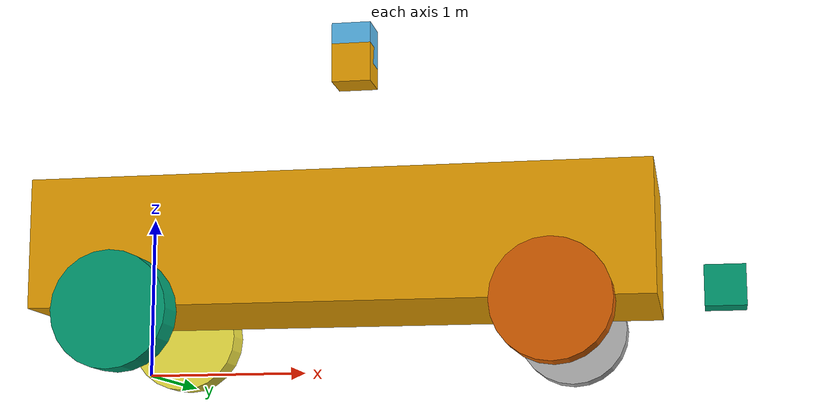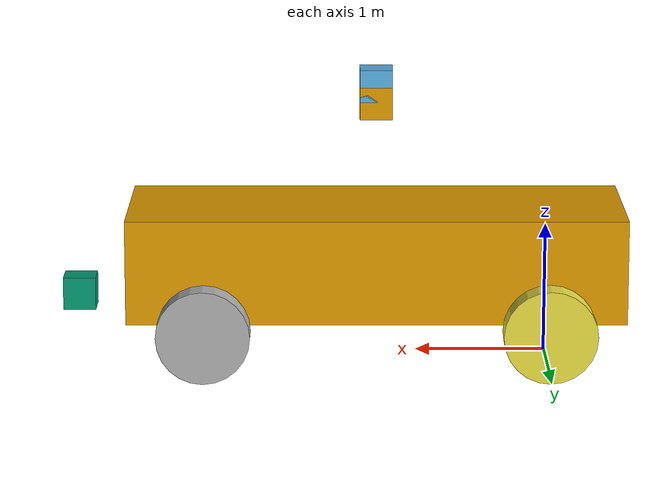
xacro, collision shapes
<?xml version="1.0" ?>

<robot name="$(arg roboname)" xmlns:xacro="http://www.ros.org/wiki/xacro">

  <xacro:property name="PI" value="3.1415926835897931"/>
  <xacro:property name="base_height" value="0.4039"/>  <!-- ed: modified-->
  <xacro:property name="base_mass" value="2050"/>
  <xacro:property name="base_mass_ixx" value="63"/>
  <xacro:property name="base_mass_iyy" value="1048"/>
  <xacro:property name="base_mass_izz" value="1111"/>
  <xacro:property name="base_mass_ixz" value="-31"/>
  <xacro:property name="tyre_x" value="2.62"/>  <!-- ed: modified-->
  <xacro:property name="tyre_y" value="0.765"/>
  <xacro:property name="tyre_length" value="0.229"/>
  <xacro:property name="tyre_r" value="0.319"/>  <!-- ed: modified-->
  <xacro:property name="tyre_radius" value="0.356"/>  <!-- ed: 1/0.356 = 2.808,  -->
                                                      <!-- that's why we multiply 2.81 in cmd2gazebo.py to calculate wheel speed. -->
  <xacro:property name="tyre_mass" value="40"/>
  <xacro:property name="tyre_mass_ixx" value="54"/>
  <xacro:property name="tyre_mass_iyy" value="56"/>
  <xacro:property name="tyre_mass_izz" value="104"/>
  <xacro:property name="car_height" value="0.8"/> <!-- ed: modified-->
  <xacro:property name="car_to_bumper" value="3.6"/> <!-- ed: modified-->
  <xacro:property name="front_bumper_height" value="${car_height/2}"/>
  <xacro:property name="sensor_box" value="0.25"/>
  <xacro:property name="sensor_box2" value="0.01"/>
  <xacro:property name="tyre_height" value="-0.696"/>
  <xacro:property name="str_length" value="0.01"/>
  <xacro:property name="str_radius" value="0.1"/>
  <xacro:property name="str_angle" value="0.6"/>
  <xacro:property name="car_width" value="1.301"/>
  <xacro:property name="tyre_origin">
    <origin xyz="0 0 0" rpy="${PI/2} 0 0"/>
  </xacro:property>
  <xacro:property name="tyre_origin_2">
    <origin xyz="0 0 0" rpy="0 0 ${PI/2}"/>
  </xacro:property>
  <xacro:property name="tyre_origin_3">
    <origin xyz="0 0 0" rpy="0 0 ${-PI/2}"/>
  </xacro:property>

  <xacro:include filename="$(find all_in_one)/urdf/dyros_slipping.gazebo"/>

  <!--Car Body-->
  <link name="base_link">
    <collision>
      <origin xyz="1.31 0 ${base_height + 0.36}" rpy="0 0 0"/>   <!-- ed: modified-->
      <geometry>
        <box size="3.8 ${car_width} ${car_height}"/><!-- ed: modified-->
      </geometry>
    </collision>
    <visual>
      <origin xyz="1.06 0 ${base_height + 0.391}" rpy="0 0 0"/>   <!-- ed: modified-->
      <geometry>
        <mesh filename="package://all_in_one/meshes/ford_escape_no_wheels_2.dae"/>
      </geometry>
    </visual>
  </link>

  <joint name="inertial_joint" type="fixed">
    <parent link="base_link"/>
    <child link="main_mass"/>
    <origin xyz="1.05 0 0" rpy="0 0 0"/>
  </joint>

  <link name="main_mass" type="fixed">
    <parent link="inertial_joint"/>
    <inertial>
      <origin xyz="0 0 ${base_height}" rpy="0 0 0"/>
      <mass value="${base_mass}"/>
      <inertia
          ixx="${base_mass_ixx}"  ixy="0.000000" ixz="${base_mass_ixz}"
          iyy="${base_mass_iyy}" iyz="0.000000"
          izz="${base_mass_izz}"/>
    </inertial>
  </link>

  <!--Back Right Wheel-->
  <joint name="back_right_wheel_joint" type="continuous">
    <parent link="base_link"/>
    <child link="back_right_wheel_link"/>
    <origin xyz="0 ${-tyre_y} ${tyre_r}" rpy="0 0 0"/>  <!-- ed: modified-->
    <axis xyz="0 1 0"/>
    <dynamics damping="0.1"/>
    <limit effort="10000" velocity="100" />
    <joint_properties damping="0.0" friction="0.0" />
  </joint>

  <link name="back_right_wheel_link">
    <collision>
      <xacro:insert_block name="tyre_origin"/>
      <geometry>
        <cylinder length="${tyre_length}" radius="${tyre_radius}"/>
      </geometry>
    </collision>

    <visual>
      <xacro:insert_block name="tyre_origin_3"/>
      <geometry>
        <mesh filename="package://all_in_one/meshes/ford_escape_wheel.dae"/>
        <scale xyz="1.2 1 1"/>
      </geometry>
    </visual>

    <inertial>
      <origin xyz="0 0 0" rpy="0 0 0"/>
      <mass value="${tyre_mass}"/>
      <inertia
          ixx="${tyre_mass_ixx}"  ixy="0.000000"  ixz="0.000000"
          iyy="${tyre_mass_iyy}"  iyz="0.000000"
          izz="${tyre_mass_izz}"/>
    </inertial>
  </link>

  <!--Back Left Wheel-->
  <joint name="back_left_wheel_joint" type="continuous">
    <parent link="base_link"/>
    <child link="back_left_wheel_link"/>
    <origin xyz="0 ${tyre_y} ${tyre_r}" rpy="0 0 0"/>  <!-- ed: modified-->
    <axis xyz="0 1 0"/>
    <dynamics damping="0.1"/>
    <limit effort="10000" velocity="100" />
    <joint_properties damping="0.0" friction="0.0" />
  </joint>

  <link name="back_left_wheel_link">
    <collision>
      <xacro:insert_block name="tyre_origin"/>
      <geometry>
        <cylinder length="0.229" radius="${tyre_radius}"/>
      </geometry>
    </collision>

    <visual>
      <xacro:insert_block name="tyre_origin_2"/>
      <geometry>
        <mesh filename="package://all_in_one/meshes/ford_escape_wheel.dae"/>
        <scale xyz="1.2 1 1"/>
      </geometry>
    </visual>

    <inertial>
      <origin xyz="0 0 0" rpy="0 0 0"/>
      <mass value="${tyre_mass}"/>
      <inertia
          ixx="${tyre_mass_ixx}"  ixy="0.000000"  ixz="0.000000"
          iyy="${tyre_mass_iyy}"  iyz="0.000000"
          izz="${tyre_mass_izz}"/>
    </inertial>
  </link>

  <!--Right Steering-->
  <joint name="front_right_steering_joint" type="revolute">
    <parent link="base_link"/>
    <child link="front_right_steering_link"/>
    <origin xyz="${tyre_x} ${-car_width/2 - str_length/2} ${tyre_r}" rpy="0 0 0"/>
    <axis xyz="0 0 1"/>
    <limit effort="1000.0" lower="${-str_angle}" upper="${str_angle}" velocity="0.5"/>
  </joint>

  <link name="front_right_steering_link">
    <collision>
      <xacro:insert_block name="tyre_origin"/>
      <geometry>
        <cylinder length="${str_length}" radius="${str_radius}"/>
      </geometry>
    </collision>

    <visual>
      <xacro:insert_block name="tyre_origin"/>
      <geometry>
        <cylinder length="${str_length}" radius="${str_radius}"/>
      </geometry>
    </visual>

    <inertial>
      <origin xyz="0 0 0" rpy="0 0 0"/>
      <mass value="10.00"/>
      <inertia
          ixx="0.4"  ixy="0.000000"  ixz="0.000000"
          iyy="0.6"  iyz="0.000000"
          izz="0.4"/>
    </inertial>
  </link>

  <!--Right Front Wheel-->
  <joint name="front_right_wheel_joint" type="continuous">
    <parent link="front_right_steering_link"/>
    <child link="front_right_wheel_link"/>
    <origin xyz="0 ${-str_length/2 - tyre_length/2} 0" rpy="0 0 0"/>
    <axis xyz="0 1 0"/>
  </joint>
  <link name="front_right_wheel_link">
    <collision>
      <xacro:insert_block name="tyre_origin"/>
      <geometry>
        <cylinder length="${tyre_length}" radius="${tyre_radius}"/>
      </geometry>
    </collision>

    <visual>
      <xacro:insert_block name="tyre_origin_3"/>
      <geometry>
        <mesh filename="package://all_in_one/meshes/ford_escape_wheel.dae"/>
        <scale xyz="1.2 1 1"/>
      </geometry>
    </visual>

    <inertial>
      <origin xyz="0 0 0" rpy="0 0 0"/>
      <mass value="${tyre_mass}"/>
      <inertia
          ixx="${tyre_mass_ixx}"  ixy="0.000000"  ixz="0.000000"
          iyy="${tyre_mass_iyy}"  iyz="0.000000"
          izz="${tyre_mass_izz}"/>
    </inertial>
  </link>

  <!--Left Steering-->
  <joint name="front_left_steering_joint" type="revolute">
    <parent link="base_link"/>
    <child link="front_left_steering_link"/>
    <origin xyz="${tyre_x} ${car_width/2 + str_length/2} ${tyre_r}" rpy="0 0 0"/>
    <axis xyz="0 0 1"/>
    <limit effort="1000.0" lower="${-str_angle}" upper="${str_angle}" velocity="0.5"/>
  </joint>

  <link name="front_left_steering_link">
    <parent link="base_link"/>
    <collision>
      <xacro:insert_block name="tyre_origin"/>
      <geometry>
        <cylinder length="${str_length}" radius="${str_radius}"/>
      </geometry>
    </collision>

    <visual>
      <xacro:insert_block name="tyre_origin"/>
      <geometry>
        <cylinder length="${str_length}" radius="${str_radius}"/>
      </geometry>
    </visual>

    <inertial>
      <origin xyz="0 0 0" rpy="0 0 0"/>
      <mass value="10.00"/>
      <inertia
          ixx="0.4"  ixy="0.000000"  ixz="0.000000"
          iyy="0.6"  iyz="0.000000"
          izz="0.4"/>
    </inertial>
  </link>

  <!--Front Right Wheel-->
  <joint name="front_left_wheel_joint" type="continuous">
    <parent link="front_left_steering_link"/>
    <child link="front_left_wheel_link"/>
    <origin xyz="0 ${str_length/2 + tyre_length/2} 0" rpy="0 0 0"/>
    <axis xyz="0 1 0"/>

    <dynamics damping="0.1"/>
    <limit effort="10000" velocity="100" />
    <joint_properties damping="0.0" friction="0.0" />

  </joint>

  <link name="front_left_wheel_link">
    <parent link="front_left_wheel_joint"/>
    <collision>
      <origin xyz="0 0 0" rpy="${PI/2} 0 0"/>
      <geometry>
        <cylinder length="0.229" radius="${tyre_radius}"/>
      </geometry>
    </collision>

    <visual>
      <xacro:insert_block name="tyre_origin_2"/>
      <geometry>
        <mesh filename="package://all_in_one/meshes/ford_escape_wheel.dae"/>
        <scale xyz="1.2 1 1"/>
      </geometry>
    </visual>

    <inertial>
      <origin xyz="0 0 0" rpy="0 0 0"/>
      <mass value="${tyre_mass}"/>
      <inertia
          ixx="${tyre_mass_ixx}"  ixy="0.000000"  ixz="0.000000"
          iyy="${tyre_mass_iyy}"  iyz="0.000000"
          izz="${tyre_mass_izz}"/>
    </inertial>
  </link>

  <!-- Camera-->
  <joint name="camera_joint" type="fixed">
    <origin xyz="1.31 0 ${sensor_box/2 + 1.841}" rpy="0 0 0"/>   <!-- ed: modified-->
    <axis xyz="0 0 1"/>
    <parent link="base_link"/>
    <child link="camera_link"/>
  </joint>

  <link name="camera_link">
    <collision>
      <origin xyz="0 0 0" rpy="0 0 0"/>
      <geometry>
	<box size="${sensor_box} ${sensor_box} ${sensor_box}"/>
      </geometry>
    </collision>

    <visual>
      <origin xyz="0 0 0" rpy="0 0 0"/>
      <geometry>
	<box size="${sensor_box} ${sensor_box} ${sensor_box}"
             />
      </geometry>
    </visual>

    <inertial>
      <mass value="1e-5" />
      <origin xyz="0 0 0" rpy="0 0 0"/>
      <inertia ixx="1e-6" ixy="0" ixz="0" iyy="1e-6" iyz="0" izz="1e-6" />
    </inertial>
  </link>

  <!--Velodyne LIDAR-->
  <joint name="laser_joint" type="fixed">
    <origin xyz="0 0 ${sensor_box/2 + 0.01}" rpy="0 0 0"/>
    <axis xyz="0 0 1"/>
    <parent link="camera_link"/>
    <child link="laser_link"/>
  </joint>

  <link name="laser_link">
    <collision>
      <origin xyz="0 0 0" rpy="0 0 0"/>
      <geometry>
        <box size="${sensor_box} ${sensor_box} ${sensor_box}"/>
      </geometry>
    </collision>

    <visual>
      <origin xyz="0 0 0" rpy="0 0 0"/>
      <geometry>
        <mesh filename="package://all_in_one/meshes/hokuyo.dae"/>
      </geometry>
    </visual>

    <inertial>
      <mass value="1e-5" />
      <origin xyz="0 0 0" rpy="0 0 0"/>
      <inertia ixx="1e-6" ixy="0" ixz="0" iyy="1e-6" iyz="0" izz="1e-6" />
    </inertial>
  </link>

  <joint name="front_laser_joint" type="fixed">
    <origin xyz="${car_to_bumper} 0 ${ sensor_box/2 + 0.351}" rpy="0 0 0"/>  <!-- ed: modified-->
    <axis xyz="0 0 1"/>
    <parent link="base_link"/>
    <child link="front_laser_link"/>
  </joint>

  <link name="front_laser_link">
    <parent link="front_laser_joint"/>
    <collision>
      <origin xyz="0 0 0" rpy="0 0.0 0"/>
      <geometry>
        <box size="${sensor_box} ${sensor_box} ${sensor_box}"/>
      </geometry>
    </collision>
    <visual>
      <origin xyz="0 0 0" rpy="0 0 0"/>
      <geometry>
        <box size="${sensor_box} ${sensor_box} ${sensor_box}"/>
      </geometry>
    </visual>

    <inertial>
      <mass value="1e-5" />
      <origin xyz="0 0 0" rpy="0 0 0"/>
      <inertia ixx="1e-6" ixy="0" ixz="0" iyy="1e-6" iyz="0" izz="1e-6" />
    </inertial>
  </link>

  <!-- motors and transmissions for the two rear wheels -->
  <transmission name="tran1">
    <type>transmission_interface/SimpleTransmission</type>
    <joint name="back_right_wheel_joint">
      <hardwareInterface>VelocityJointInterface</hardwareInterface>
    </joint>
    <actuator name="motor1">
      <hardwareInterface>VelocityJointInterface</hardwareInterface>
      <mechanicalReduction>1</mechanicalReduction>
    </actuator>
  </transmission>
  <transmission name="tran2">
    <type>transmission_interface/SimpleTransmission</type>
    <joint name="back_left_wheel_joint">
      <hardwareInterface>VelocityJointInterface</hardwareInterface>
    </joint>
    <actuator name="motor2">
      <hardwareInterface>VelocityJointInterface</hardwareInterface>
      <mechanicalReduction>1</mechanicalReduction>
    </actuator>
  </transmission>
  <transmission name="rack_and_pinion_left">
    <type>transmission_interface/SimpleTransmission</type>
    <joint name="front_left_steering_joint">
      <hardwareInterface>PositionJointInterface</hardwareInterface>
    </joint>
    <actuator name="eps_left">
      <hardwareInterface>PositionJointInterface</hardwareInterface>
      <mechanicalReduction>1</mechanicalReduction>
    </actuator>
  </transmission>
  <transmission name="rack_and_pinion_right">
    <type>transmission_interface/SimpleTransmission</type>
    <joint name="front_right_steering_joint">
      <hardwareInterface>PositionJointInterface</hardwareInterface>
    </joint>
    <actuator name="eps_right">
      <hardwareInterface>PositionJointInterface</hardwareInterface>
      <mechanicalReduction>1</mechanicalReduction>
    </actuator>
  </transmission>

</robot>
